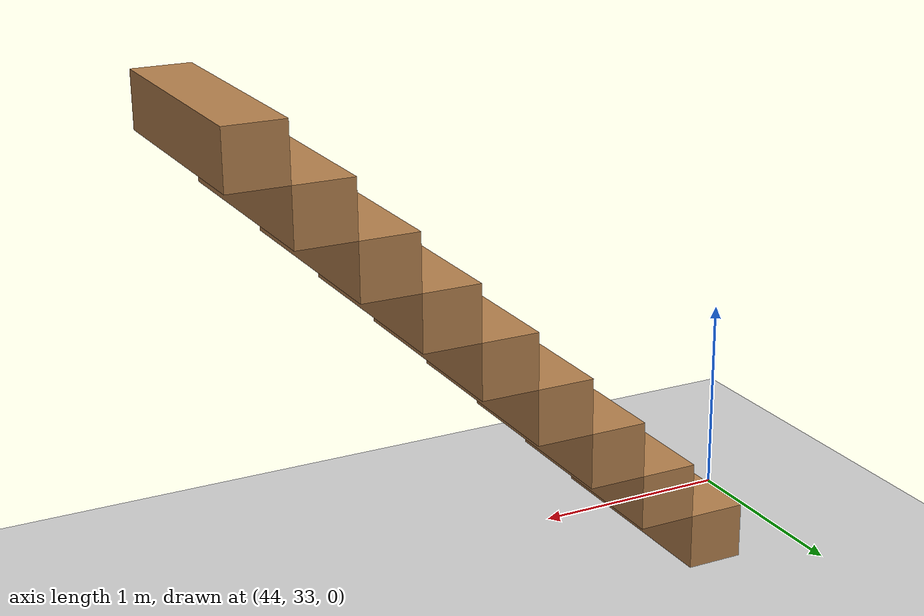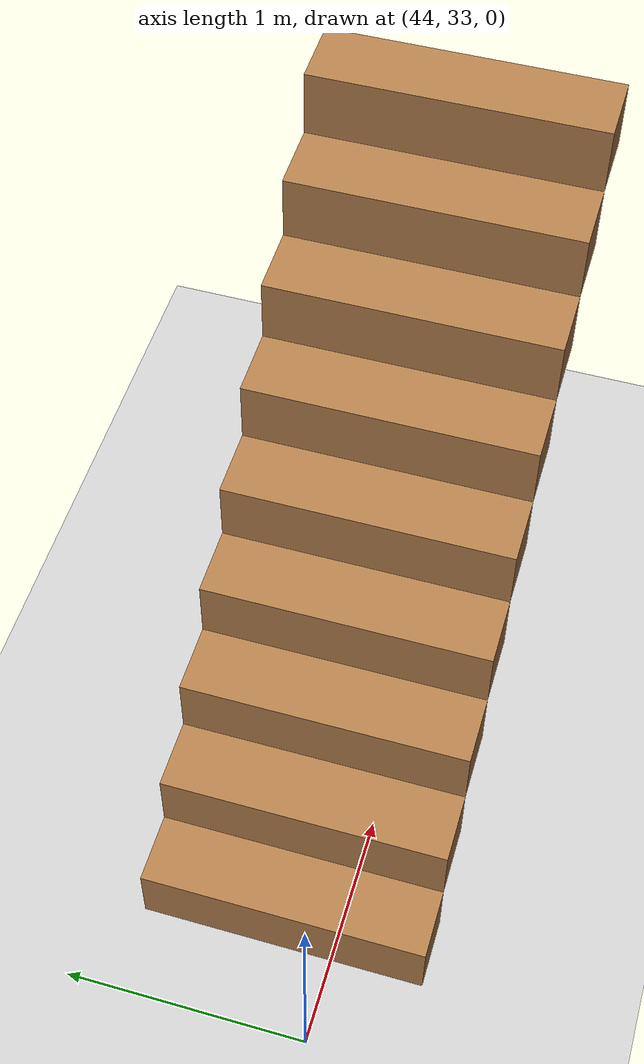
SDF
<sdf version="1.6">
 <world name="default">
  <model name="ground_plane">
   <static>1</static>
   <link name="link">
    <collision name="collision">
     <geometry><plane><normal>0 0 1</normal><size>100 100</size></plane></geometry>
     <surface><friction><ode><mu>100</mu><mu2>50</mu2></ode></friction></surface>
    </collision>
    <visual name="visual">
     <cast_shadows>0</cast_shadows>
     <geometry><plane><normal>0 0 1</normal><size>100 100</size></plane></geometry>
     <material>
      <script><uri>file://media/materials/scripts/gazebo.material</uri><name>Gazebo/Grey</name></script>
     </material>
    </visual>
   </link>
  </model>
  <model name="CVSSP">
   <pose>23.8714 24.094 0 0 -0 0</pose>
   <link name="Stairs_2">
    <visual name="Stairs_2_Visual_0">
     <pose>20.6299 9.1142 0.138889 0 -0 1.5708</pose>
     <geometry><box><size>1.1749 0.286667 0.277778</size></box></geometry>
     <material>
      <script><uri>file://media/materials/scripts/gazebo.material</uri><name>Gazebo/Wood</name></script>
      <ambient>1 1 1 1</ambient>
     </material>
    </visual>
    <collision name="Stairs_2_Collision_0">
     <geometry><box><size>1.1749 0.286667 0.277778</size></box></geometry>
     <pose>20.6299 9.1142 0.138889 0 -0 1.5708</pose>
    </collision>
    <visual name="Stairs_2_Visual_1">
     <pose>20.9166 9.1142 0.416667 0 -0 1.5708</pose>
     <geometry><box><size>1.1749 0.286667 0.277778</size></box></geometry>
     <material>
      <script><uri>file://media/materials/scripts/gazebo.material</uri><name>Gazebo/Wood</name></script>
      <ambient>1 1 1 1</ambient>
     </material>
    </visual>
    <collision name="Stairs_2_Collision_1">
     <geometry><box><size>1.1749 0.286667 0.277778</size></box></geometry>
     <pose>20.9166 9.1142 0.416667 0 -0 1.5708</pose>
    </collision>
    <visual name="Stairs_2_Visual_2">
     <pose>21.2033 9.1142 0.694444 0 -0 1.5708</pose>
     <geometry><box><size>1.1749 0.286667 0.277778</size></box></geometry>
     <material>
      <script><uri>file://media/materials/scripts/gazebo.material</uri><name>Gazebo/Wood</name></script>
      <ambient>1 1 1 1</ambient>
     </material>
    </visual>
    <collision name="Stairs_2_Collision_2">
     <geometry><box><size>1.1749 0.286667 0.277778</size></box></geometry>
     <pose>21.2033 9.1142 0.694444 0 -0 1.5708</pose>
    </collision>
    <visual name="Stairs_2_Visual_3">
     <pose>21.4899 9.1142 0.972222 0 -0 1.5708</pose>
     <geometry><box><size>1.1749 0.286667 0.277778</size></box></geometry>
     <material>
      <script><uri>file://media/materials/scripts/gazebo.material</uri><name>Gazebo/Wood</name></script>
      <ambient>1 1 1 1</ambient>
     </material>
    </visual>
    <collision name="Stairs_2_Collision_3">
     <geometry><box><size>1.1749 0.286667 0.277778</size></box></geometry>
     <pose>21.4899 9.1142 0.972222 0 -0 1.5708</pose>
    </collision>
    <visual name="Stairs_2_Visual_4">
     <pose>21.7766 9.1142 1.25 0 -0 1.5708</pose>
     <geometry><box><size>1.1749 0.286667 0.277778</size></box></geometry>
     <material>
      <script><uri>file://media/materials/scripts/gazebo.material</uri><name>Gazebo/Wood</name></script>
      <ambient>1 1 1 1</ambient>
     </material>
    </visual>
    <collision name="Stairs_2_Collision_4">
     <geometry><box><size>1.1749 0.286667 0.277778</size></box></geometry>
     <pose>21.7766 9.1142 1.25 0 -0 1.5708</pose>
    </collision>
    <visual name="Stairs_2_Visual_5">
     <pose>22.0633 9.1142 1.52778 0 -0 1.5708</pose>
     <geometry><box><size>1.1749 0.286667 0.277778</size></box></geometry>
     <material>
      <script><uri>file://media/materials/scripts/gazebo.material</uri><name>Gazebo/Wood</name></script>
      <ambient>1 1 1 1</ambient>
     </material>
    </visual>
    <collision name="Stairs_2_Collision_5">
     <geometry><box><size>1.1749 0.286667 0.277778</size></box></geometry>
     <pose>22.0633 9.1142 1.52778 0 -0 1.5708</pose>
    </collision>
    <visual name="Stairs_2_Visual_6">
     <pose>22.3499 9.1142 1.80556 0 -0 1.5708</pose>
     <geometry><box><size>1.1749 0.286667 0.277778</size></box></geometry>
     <material>
      <script><uri>file://media/materials/scripts/gazebo.material</uri><name>Gazebo/Wood</name></script>
      <ambient>1 1 1 1</ambient>
     </material>
    </visual>
    <collision name="Stairs_2_Collision_6">
     <geometry><box><size>1.1749 0.286667 0.277778</size></box></geometry>
     <pose>22.3499 9.1142 1.80556 0 -0 1.5708</pose>
    </collision>
    <visual name="Stairs_2_Visual_7">
     <pose>22.6366 9.1142 2.08333 0 -0 1.5708</pose>
     <geometry><box><size>1.1749 0.286667 0.277778</size></box></geometry>
     <material>
      <script><uri>file://media/materials/scripts/gazebo.material</uri><name>Gazebo/Wood</name></script>
      <ambient>1 1 1 1</ambient>
     </material>
    </visual>
    <collision name="Stairs_2_Collision_7">
     <geometry><box><size>1.1749 0.286667 0.277778</size></box></geometry>
     <pose>22.6366 9.1142 2.08333 0 -0 1.5708</pose>
    </collision>
    <visual name="Stairs_2_Visual_8">
     <pose>22.9233 9.1142 2.36111 0 -0 1.5708</pose>
     <geometry><box><size>1.1749 0.286667 0.277778</size></box></geometry>
     <material>
      <script><uri>file://media/materials/scripts/gazebo.material</uri><name>Gazebo/Wood</name></script>
      <ambient>1 1 1 1</ambient>
     </material>
    </visual>
    <collision name="Stairs_2_Collision_8">
     <geometry><box><size>1.1749 0.286667 0.277778</size></box></geometry>
     <pose>22.9233 9.1142 2.36111 0 -0 1.5708</pose>
    </collision>
   </link>
   <static>1</static>
  </model>
 </world>
</sdf>
